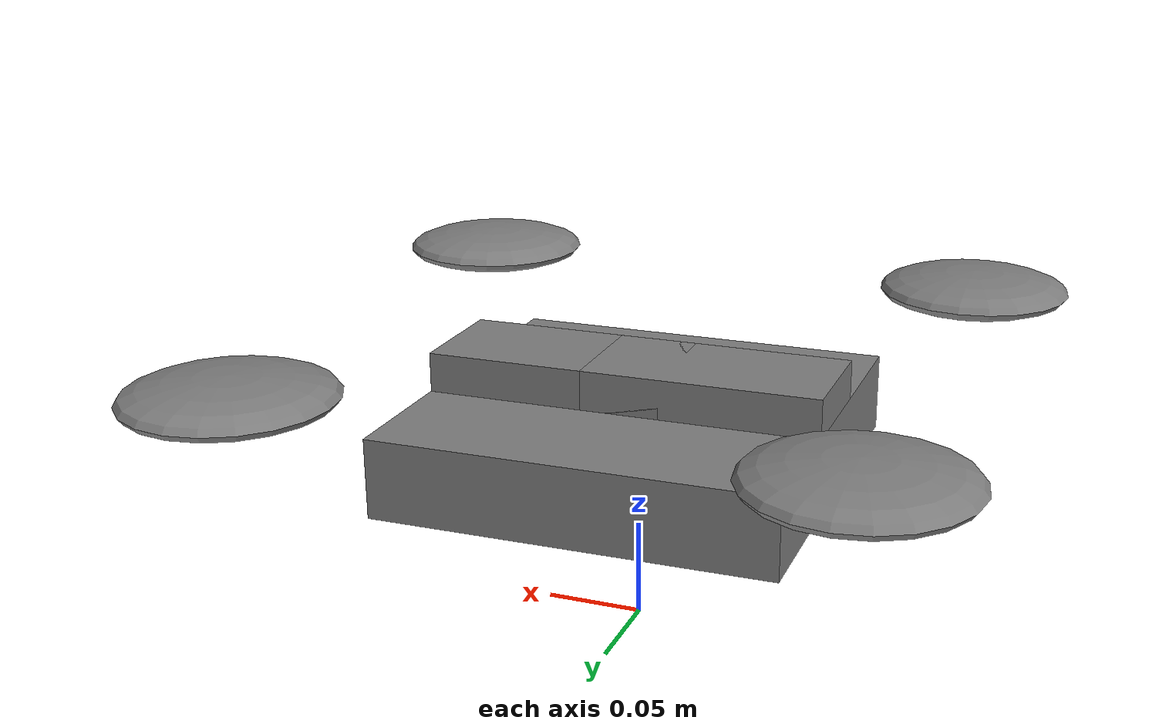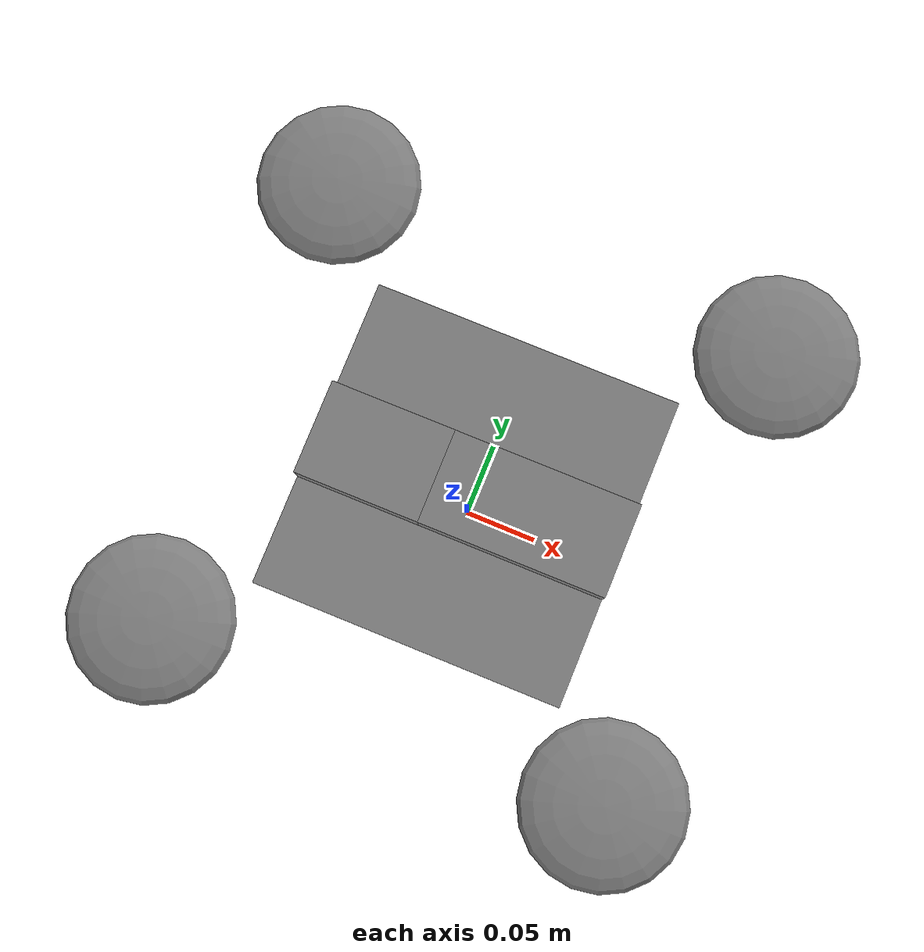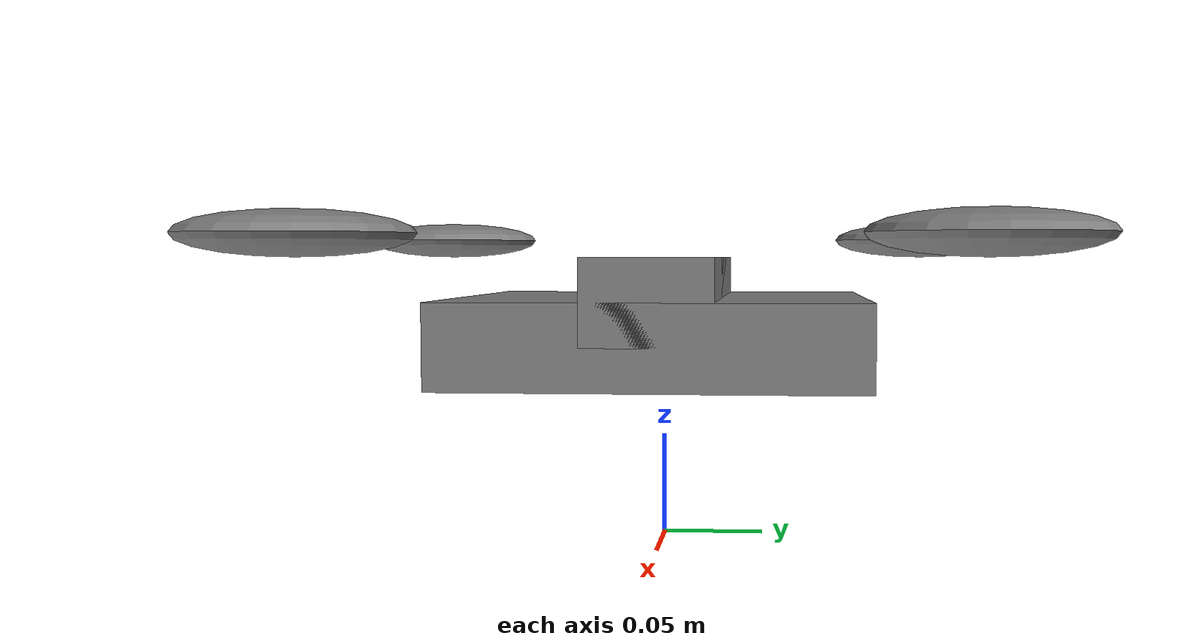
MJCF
<mujoco model="SymmetricQuadrotor">
  <compiler autolimits="true"/>
  <option timestep="0.01" density="1.225" viscosity="1.8e-5"/>

  <default>
    <default class="quad">
      <!-- Body defaults: zero mass at the default level so that masses come from individual geoms -->
      <geom mass="0"/>
      <motor ctrlrange="0 13"/>
      <!-- Use simple primitives for visuals -->
      <default class="visual">
        <geom type="sphere" size="0.05" contype="0" conaffinity="0"/>
      </default>
      <default class="collision">
        <geom type="box" size="0.05 0.05 0.02"/>
        <default class="rotor">
          <geom type="ellipsoid" size="0.05 0.05 0.01"/>
        </default>
      </default>
      <site/>
    </default>
  </default>

  <!-- No asset section is used; all geometry is built from primitives -->

  <worldbody>
    <light name="spotlight" mode="targetbodycom" target="x2" pos="0 -1 2"/>
    <body name="x2" pos="0 0 0.1" childclass="quad">
      <freejoint/>
      <camera name="track" pos="-1 0 0.5" xyaxes="0 -1 0 1 0 2" mode="trackcom"/>
      <!-- Define an IMU site -->
      <site name="imu" pos="0 0 0.02"/>
      <!-- Visual representation of the quadrotor body -->
      <geom type="box" size="0.1 0.1 0.02" pos="0 0 0"/>
      <!-- Collision geoms (optional, here just for example) -->
      <geom type="box" size="0.06 0.03 0.02" pos="0.04 0 0.02"/>
      <geom type="box" size="0.06 0.03 0.02" pos="-0.04 0 0.02"/>

      <!-- Rotor geometry: symmetric positions (X-configuration) -->
      <!-- Using an arm length L=0.20, each rotor is placed at (±0.1414, ±0.1414, 0.05) -->
      <geom name="rotor1" class="rotor" pos="0.1414 0.1414 0.05" mass="0.25"/>
      <geom name="rotor2" class="rotor" pos="0.1414 -0.1414 0.05" mass="0.25"/>
      <geom name="rotor3" class="rotor" pos="-0.1414 -0.1414 0.05" mass="0.25"/>
      <geom name="rotor4" class="rotor" pos="-0.1414 0.1414 0.05" mass="0.25"/>

      <!-- Thrust sites at the same positions as the rotors -->
      <site name="thrust1" pos="0.1414 0.1414 0.05" size="0.01"/>
      <site name="thrust2" pos="0.1414 -0.1414 0.05" size="0.01"/>
      <site name="thrust3" pos="-0.1414 -0.1414 0.05" size="0.01"/>
      <site name="thrust4" pos="-0.1414 0.1414 0.05" size="0.01"/>
    </body>
  </worldbody>

  <actuator>
    <!-- Motor actuators: assign gear values so that rotor1 and rotor3 have one sign and rotor2 and rotor4 the opposite sign. -->
    <motor class="quad" name="thrust1" site="thrust1" gear="0 0 1 0 0 -0.0201"/>
    <motor class="quad" name="thrust2" site="thrust2" gear="0 0 1 0 0 0.0201"/>
    <motor class="quad" name="thrust3" site="thrust3" gear="0 0 1 0 0 -0.0201"/>
    <motor class="quad" name="thrust4" site="thrust4" gear="0 0 1 0 0 0.0201"/>
  </actuator>

  <sensor>
    <gyro name="body_gyro" site="imu"/>
    <accelerometer name="body_linacc" site="imu"/>
    <framequat name="body_quat" objtype="site" objname="imu"/>
  </sensor>

  <keyframe>
    <!-- Hover keyframe: the body is at 0 0 0.3 with a neutral quaternion, and each motor at 3.25 N -->
    <key name="hover" qpos="0 0 0.3 1 0 0 0" ctrl="3.25 3.25 3.25 3.25"/>
  </keyframe>
</mujoco>
